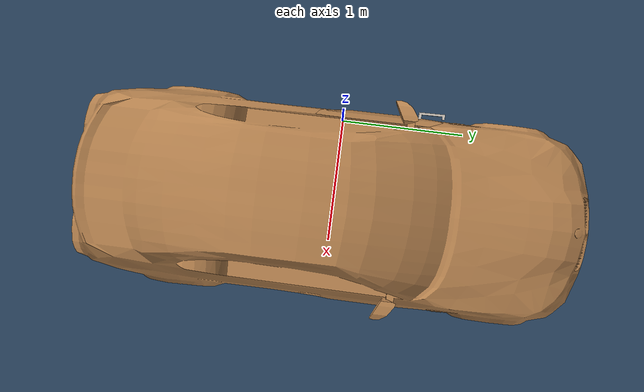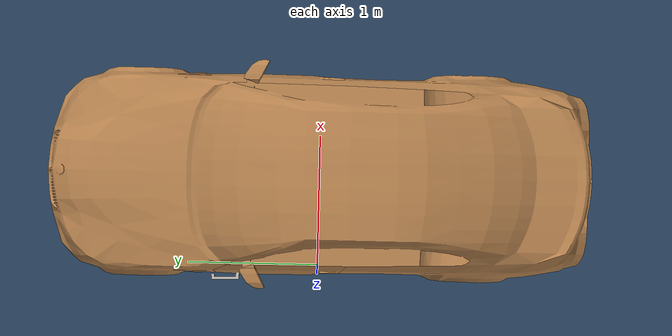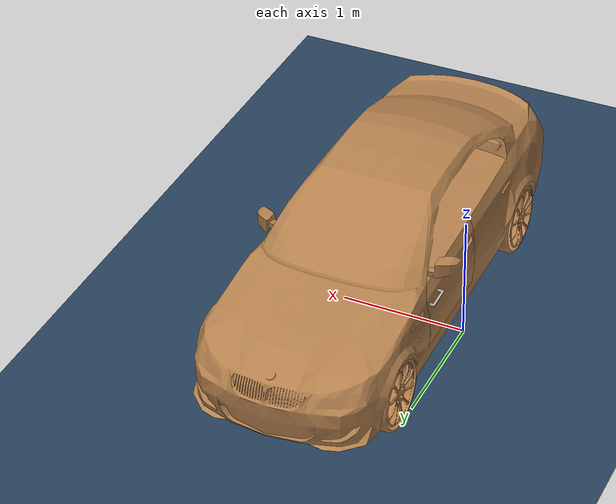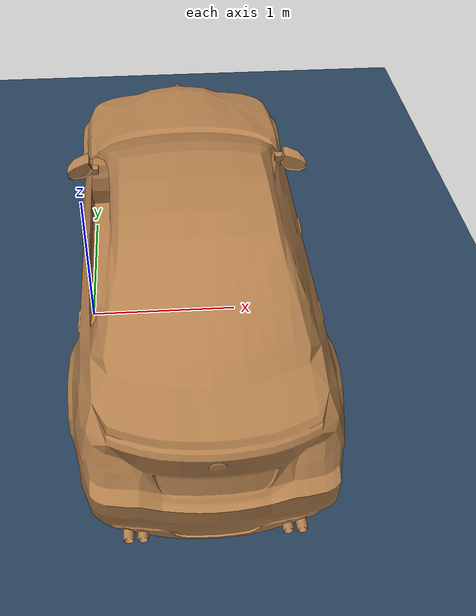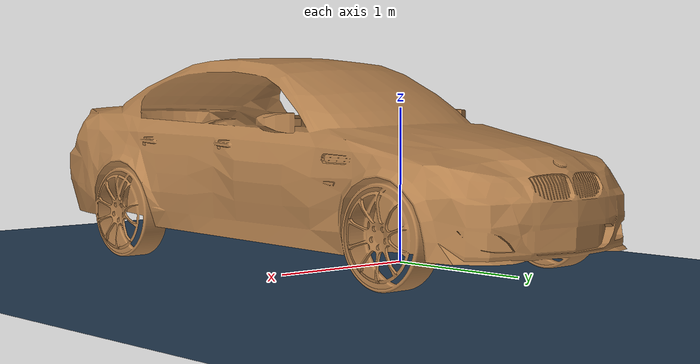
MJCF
<mujoco model="right-pull-door">
  <compiler angle="radian" meshdir="texture_stl/"/>

  <visual>
    <headlight diffuse="0.6 0.6 0.6" ambient="0.3 0.3 0.3" specular="0 0 0"/>
    <rgba haze="0.15 0.25 0.35 1"/>
    <global azimuth="-20" elevation="-20" ellipsoidinertia="true"/>
  </visual>

  <asset>
    <texture type="skybox" builtin="gradient" rgb1="0.3 0.5 0.7" rgb2="0 0 0" width="512" height="3072"/>
    <texture type="2d" name="groundplane" builtin="checker" mark="edge" rgb1="0.2 0.3 0.4" rgb2="0.1 0.2 0.3"
      markrgb="0.8 0.8 0.8" width="300" height="300"/>
    <texture name="wood" type="cube" file="texture_stl/texture_0.png"/>
    <texture name="knob" type="2d" file="texture_stl/texture_0.png"/>
    <material name="wood_material" texture="wood"/>
    <material name="knob_material" texture="knob"/>
    <material name="groundplane" texture="groundplane" texuniform="true" texrepeat="5 5" reflectance="0.2"/>

    <mesh name="frame" file="frame.stl" scale="0.5267143154615768 0.5267143154615768 0.5267143154615768"/>
    <mesh name="board" file="board.stl" scale="0.5267143154615768 0.5267143154615768 0.5267143154615768"/>
    <mesh name="9968001" file="9968001.stl" scale="1.0622982433678803 1.0622982433678803 1.0622982433678803"/>
  </asset>

  <worldbody>
    <light pos="0 0 1.5" dir="0 0 -1" directional="true"/>
    <geom name="floor" size="0 0 0.05" type="plane" material="groundplane"/>
    <body name="cabinet" euler="0 1.57 0" pos="0 0 0.8">
      <geom name="frame" pos="0 0 0" quat="0.5 0.5 -0.5 -0.5" type="mesh" mesh="frame" material="wood_material" conaffinity="0" contype="0"/>
      <body name="link_1" pos="0 0.7513263684283074 0" quat="0.5 0.5 -0.5 -0.5">
        <joint name="joint_1" pos="0 0 0" axis="0 0 -1" range="0 1.50796"/>
        <geom name="board" pos="0.7513263684283074 0 0" quat="1 0 0 0" type="mesh" mesh="board" material="wood_material"/>
        <body name="link_2" pos="0 0 0">
          <joint name="joint_2" pos="0 1 0" axis="0 -1 0" range="0 1.50796"/>
          <geom name="handle" type="mesh" mesh="9968001" material="knob_material"/>
        </body>
      </body>
    </body>
  </worldbody>
</mujoco>
